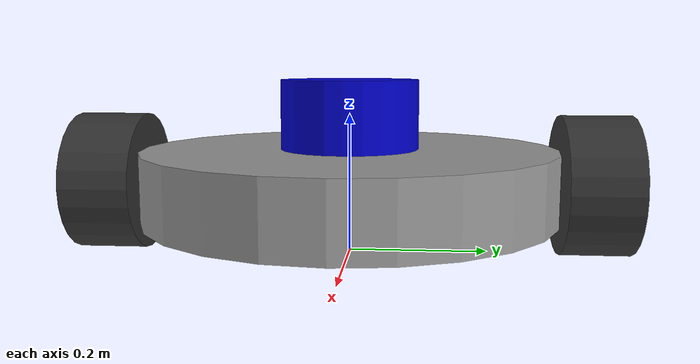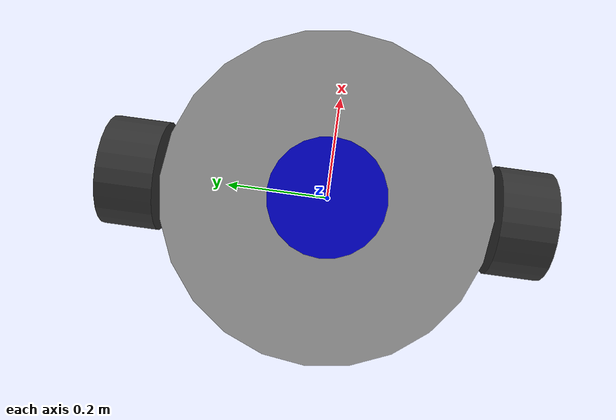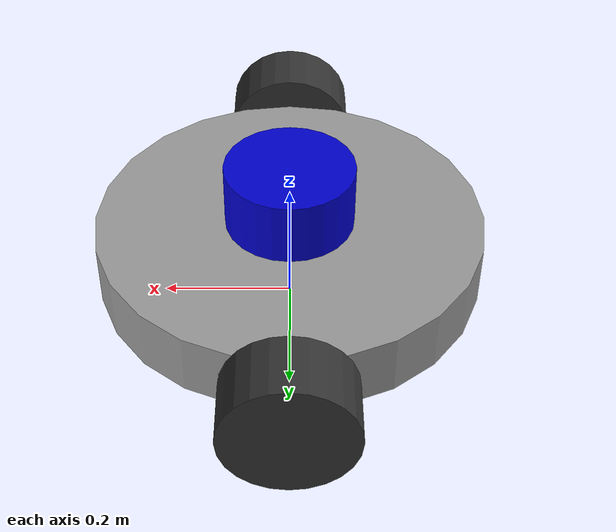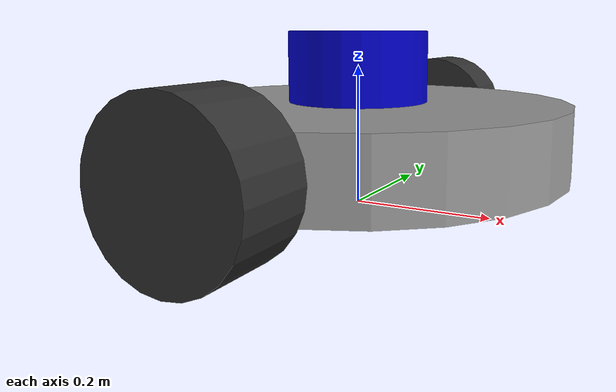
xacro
<?xml version="1.0"?>
<robot xmlns:xacro="http://www.ros.org/wiki/xacro" name="two_wheel_robot">

  <xacro:property name="base_radius" value="0.3" />
  <xacro:property name="base_height" value="0.1" />
  <xacro:property name="wheel_radius" value="0.1" />
  <xacro:property name="wheel_thickness" value="0.1" />
  <xacro:property name="lidar_radius" value="0.1" />
  <xacro:property name="lidar_height" value="0.1" />
  <xacro:property name="base_mass" value="10.0" />
  <xacro:property name="wheel_mass" value="1.0" />
  <xacro:property name="lidar_mass" value="0.5" />
  <xacro:property name="imu_mass" value="0.1" />

  <link name="base_link">
    <visual>
      <origin xyz="0 0 ${wheel_radius}" rpy="0 0 0" />
      <geometry>
        <cylinder radius="${base_radius}" length="${base_height}" />
      </geometry>
      <material name="gray">
        <color rgba="0.6 0.6 0.6 1" />
      </material>
    </visual>
    <collision>
      <origin xyz="0 0 ${wheel_radius}" rpy="0 0 0" />
      <geometry>
        <cylinder radius="${base_radius}" length="${base_height}" />
      </geometry>
    </collision>
    <inertial>
      <mass value="${base_mass}" />
      <origin xyz="0 0 ${wheel_radius}" rpy="0 0 0" />
      <inertia ixx="0.1" iyy="0.1" izz="0.1"
        ixy="0.0" ixz="0.0" iyz="0.0" />
    </inertial>
  </link>

  <link name="right_wheel_link">
    <visual>
      <origin xyz="0 0 0" rpy="1.5708 0 0" />
      <geometry>
        <cylinder radius="${wheel_radius}" length="${wheel_thickness}" />
      </geometry>
      <material name="black">
        <color rgba="0.2 0.2 0.2 1" />
      </material>
    </visual>
    <collision>
      <origin xyz="0 0 0" rpy="1.5708 0 0" />
      <geometry>
        <cylinder radius="${wheel_radius}" length="${wheel_thickness}" />
      </geometry>
    </collision>
    <inertial>
      <mass value="${wheel_mass}" />
      <origin xyz="0 0 0" rpy="0 0 0" />
      <inertia ixx="0.005" iyy="0.005" izz="0.001"
        ixy="0.0" ixz="0.0" iyz="0.0" />
    </inertial>
  </link>

  <link name="left_wheel_link">
    <visual>
      <origin xyz="0 0 0" rpy="1.5708 0 0" />
      <geometry>
        <cylinder radius="${wheel_radius}" length="${wheel_thickness}" />
      </geometry>
      <material name="black">
        <color rgba="0.2 0.2 0.2 1" />
      </material>
    </visual>
    <collision>
      <origin xyz="0 0 0" rpy="1.5708 0 0" />
      <geometry>
        <cylinder radius="${wheel_radius}" length="${wheel_thickness}" />
      </geometry>
    </collision>
    <inertial>
      <mass value="${wheel_mass}" />
      <origin xyz="0 0 0" rpy="0 0 0" />
      <inertia ixx="0.005" iyy="0.005" izz="0.001"
        ixy="0.0" ixz="0.0" iyz="0.0" />
    </inertial>
  </link>

  <link name="lidar_link">
    <visual>
      <origin xyz="0 0 0" rpy="0 0 0" />
      <geometry>
        <cylinder radius="${lidar_radius}" length="${lidar_height}" />
      </geometry>
      <material name="blue">
        <color rgba="0.0 0.0 0.8 1" />
      </material>
    </visual>
    <collision>
      <origin xyz="0 0 0" rpy="0 0 0" />
      <geometry>
        <cylinder radius="${lidar_radius}" length="${lidar_height}" />
      </geometry>
    </collision>
    <inertial>
      <mass value="${lidar_mass}" />
      <origin xyz="0 0 0" rpy="0 0 0" />
      <inertia ixx="${lidar_mass*(3*lidar_radius*lidar_radius + lidar_height*lidar_height)/12}"
               iyy="${lidar_mass*(3*lidar_radius*lidar_radius + lidar_height*lidar_height)/12}"
               izz="${lidar_mass*lidar_radius*lidar_radius/2}"
               ixy="0.0" ixz="0.0" iyz="0.0" />
    </inertial>
  </link>

  <link name="imu_link">
    <visual>
      <origin xyz="0 0 0" rpy="0 0 0" />
      <geometry>
        <box size="0.05 0.05 0.02" />
      </geometry>
      <material name="red">
        <color rgba="0.8 0.0 0.0 1" />
      </material>
    </visual>
    <collision>
      <origin xyz="0 0 0" rpy="0 0 0" />
      <geometry>
        <box size="0.05 0.05 0.02" />
      </geometry>
    </collision>
    <inertial>
      <mass value="${imu_mass}" />
      <origin xyz="0 0 0" rpy="0 0 0" />
      <inertia ixx="0.0001" iyy="0.0001" izz="0.0001"
               ixy="0.0" ixz="0.0" iyz="0.0" />
    </inertial>
  </link>

  <joint name="right_wheel_joint" type="continuous">
    <parent link="base_link" />
    <child link="right_wheel_link" />
    <origin xyz="0 -${base_radius + wheel_thickness/2} ${wheel_radius}" rpy="0 0 0" />
    <axis xyz="0 1 0" />
    <limit lower="-3.1416" upper="3.1416" effort="5" velocity="10" />
  </joint>

  <joint name="left_wheel_joint" type="continuous">
    <parent link="base_link" />
    <child link="left_wheel_link" />
    <origin xyz="0 ${base_radius + wheel_thickness/2} ${wheel_radius}" rpy="0 0 0" />
    <axis xyz="0 1 0" />
    <limit lower="-3.1416" upper="3.1416" effort="5" velocity="10" />
  </joint>

  <joint name="lidar_joint" type="fixed">
    <parent link="base_link" />
    <child link="lidar_link" />
    <origin xyz="0 0 ${wheel_radius + base_height/2 + lidar_height/2}" rpy="0 0 0" />
  </joint>

  <joint name="imu_joint" type="fixed">
    <parent link="base_link" />
    <child link="imu_link" />
    <origin xyz="0 0 ${wheel_radius + base_height/2}" rpy="0 0 0" />
  </joint>

  <gazebo reference="lidar_link">
    <sensor type="ray" name="lidar_sensor">
      <pose>0 0 0 0 0 0</pose>
      <visualize>true</visualize>
      <update_rate>10</update_rate>
      <ray>
        <scan>
          <horizontal>
            <samples>360</samples>
            <resolution>1</resolution>
            <min_angle>-3.14159</min_angle>
            <max_angle>3.14159</max_angle>
          </horizontal>
        </scan>
        <range>
          <min>0.10</min>
          <max>10.0</max>
          <resolution>0.01</resolution>
        </range>
        <noise>
          <type>gaussian</type>
          <mean>0.0</mean>
          <stddev>0.01</stddev>
        </noise>
      </ray>
      <plugin name="gazebo_ros_lidar_controller" filename="libgazebo_ros_ray_sensor.so">
        <ros>
          <namespace>/</namespace>
          <remapping>~/out:=scan_raw</remapping>
        </ros>
        <output_type>sensor_msgs/LaserScan</output_type>
        <frame_name>lidar_link</frame_name>
      </plugin>
    </sensor>
  </gazebo>

  <gazebo reference="imu_link">
    <gravity>true</gravity>
    <sensor name="imu_sensor" type="imu">
      <always_on>true</always_on>
      <update_rate>100</update_rate>
      <visualize>true</visualize>
      <topic>imu</topic>
      <plugin filename="libgazebo_ros_imu_sensor.so" name="imu_plugin">
        <ros>
          <namespace>/</namespace>
          <remapping>~/out:=imu</remapping>
        </ros>
        <initial_orientation_as_reference>false</initial_orientation_as_reference>
        <frame_name>imu_link</frame_name>
      </plugin>
      <imu>
        <angular_velocity>
          <x>
            <noise type="gaussian">
              <mean>0.0</mean>
              <stddev>2e-4</stddev>
            </noise>
          </x>
          <y>
            <noise type="gaussian">
              <mean>0.0</mean>
              <stddev>2e-4</stddev>
            </noise>
          </y>
          <z>
            <noise type="gaussian">
              <mean>0.0</mean>
              <stddev>2e-4</stddev>
            </noise>
          </z>
        </angular_velocity>
        <linear_acceleration>
          <x>
            <noise type="gaussian">
              <mean>0.0</mean>
              <stddev>1.7e-2</stddev>
            </noise>
          </x>
          <y>
            <noise type="gaussian">
              <mean>0.0</mean>
              <stddev>1.7e-2</stddev>
            </noise>
          </y>
          <z>
            <noise type="gaussian">
              <mean>0.0</mean>
              <stddev>1.7e-2</stddev>
            </noise>
          </z>
        </linear_acceleration>
      </imu>
    </sensor>
  </gazebo>

  <gazebo>
    <plugin name="differential_drive_controller" filename="libgazebo_ros_diff_drive.so">
      <ros>
        <namespace>/</namespace>
      </ros>
      <update_rate>50</update_rate>
      <left_joint>left_wheel_joint</left_joint>
      <right_joint>right_wheel_joint</right_joint>
      <wheel_separation>${2*(base_radius + wheel_thickness/2)}</wheel_separation>
      <wheel_diameter>${2*wheel_radius}</wheel_diameter>
      <max_wheel_torque>20</max_wheel_torque>
      <max_wheel_acceleration>1.0</max_wheel_acceleration>
      <command_topic>cmd_vel</command_topic>
      <publish_odom>true</publish_odom>
      <publish_odom_tf>true</publish_odom_tf>
      <publish_wheel_tf>true</publish_wheel_tf>
      <odometry_topic>odom</odometry_topic>
      <odometry_frame>odom</odometry_frame>
      <robot_base_frame>base_link</robot_base_frame>
    </plugin>
  </gazebo>

  <gazebo reference="base_link">
    <material>Gazebo/Grey</material>
  </gazebo>

  <gazebo reference="right_wheel_link">
    <material>Gazebo/Black</material>
    <mu1>1.0</mu1>
    <mu2>1.0</mu2>
    <kp>1000000.0</kp>
    <kd>100.0</kd>
    <minDepth>0.001</minDepth>
    <maxVel>1.0</maxVel>
  </gazebo>

  <gazebo reference="left_wheel_link">
    <material>Gazebo/Black</material>
    <mu1>1.0</mu1>
    <mu2>1.0</mu2>
    <kp>1000000.0</kp>
    <kd>100.0</kd>
    <minDepth>0.001</minDepth>
    <maxVel>1.0</maxVel>
  </gazebo>

  <gazebo reference="lidar_link">
    <material>Gazebo/Blue</material>
  </gazebo>

  <gazebo reference="imu_link">
    <material>Gazebo/Red</material>
  </gazebo>

</robot>
